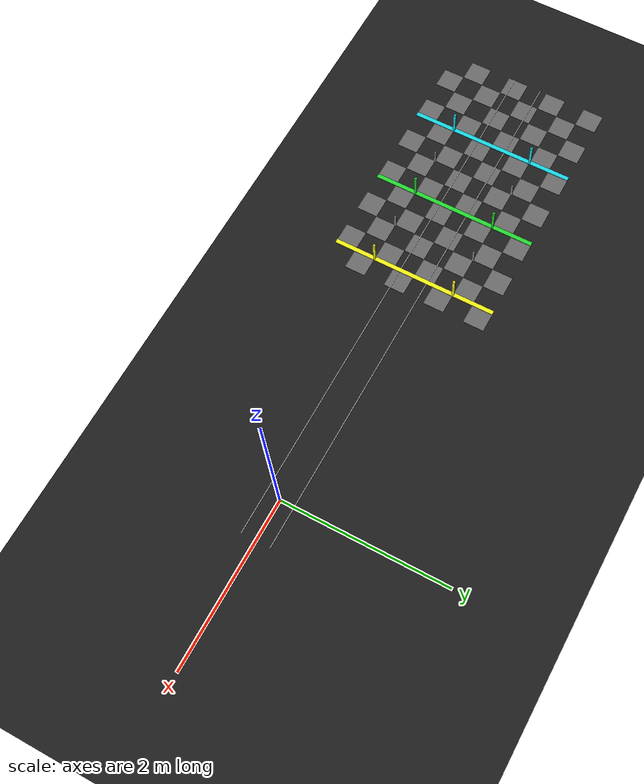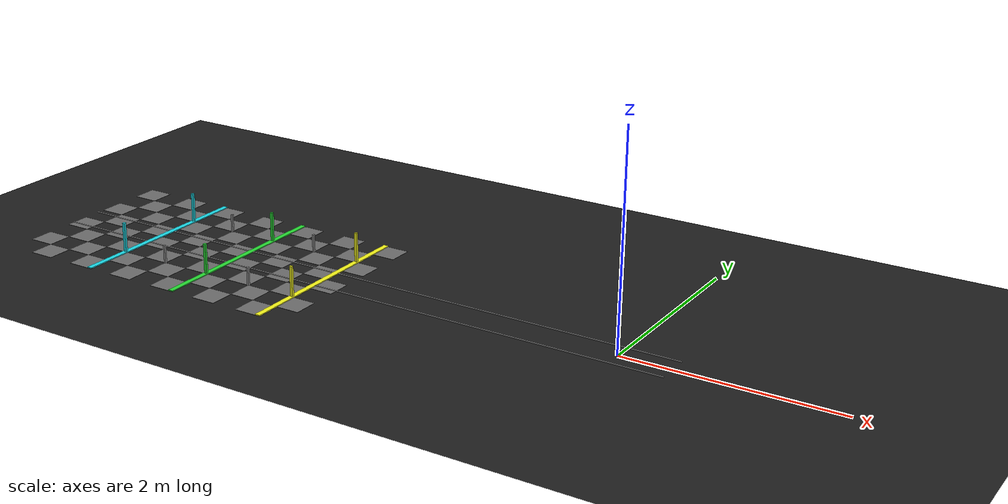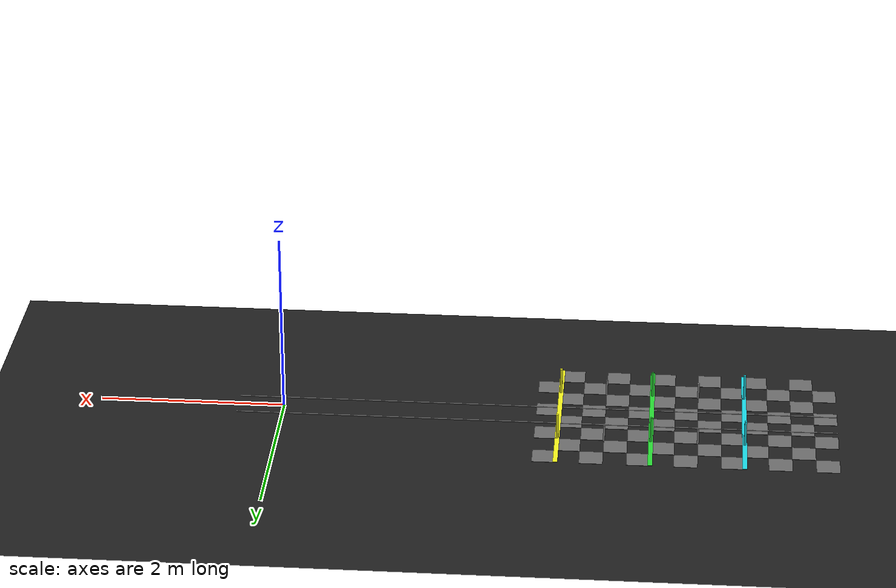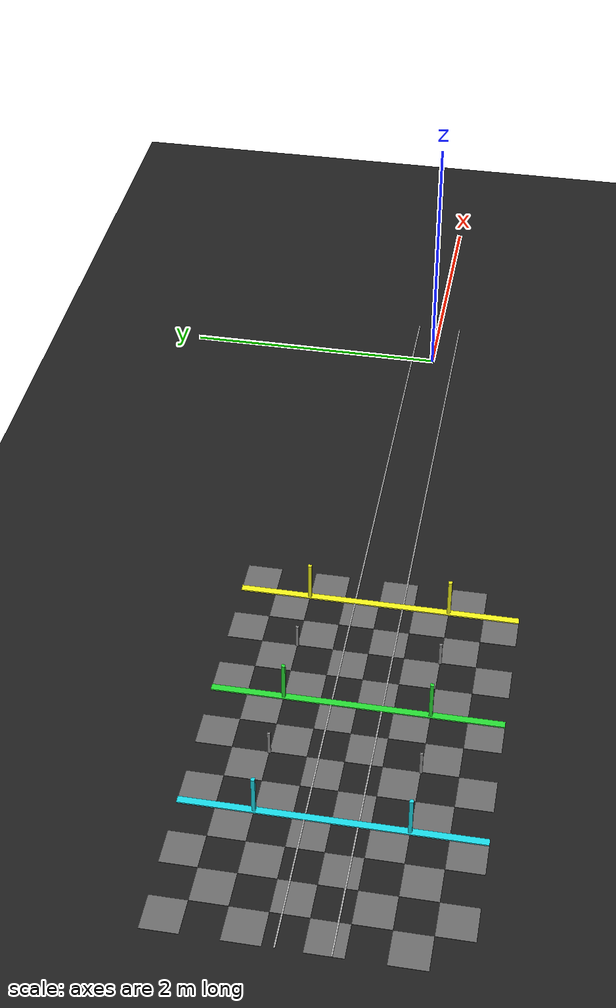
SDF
<sdf version="1.8">
 <world name="reference_grid">
  <model name="ground_plane">
   <static>true</static>
   <link name="link">
    <collision name="collision">
     <geometry><plane><normal>0 0 1</normal><size>40 40</size></plane></geometry>
    </collision>
    <visual name="visual">
     <geometry><plane><normal>0 0 1</normal><size>40 40</size></plane></geometry>
     <material><ambient>0.12 0.12 0.12 1</ambient><diffuse>0.12 0.12 0.12 1</diffuse></material>
    </visual>
   </link>
  </model>
  <model name="tile_0">
   <static>true</static>
   <pose>-5.8750 -0.6250 0.001 0 0 0</pose>
   <link name="link">
    <visual name="v">
     <geometry><box><size>0.25 0.25 0.002</size></box></geometry>
     <material><ambient>0.42 0.42 0.42 1</ambient><diffuse>0.42 0.42 0.42 1</diffuse></material>
    </visual>
   </link>
  </model>
  <model name="tile_1">
   <static>true</static>
   <pose>-5.8750 -0.1250 0.001 0 0 0</pose>
   <link name="link">
    <visual name="v">
     <geometry><box><size>0.25 0.25 0.002</size></box></geometry>
     <material><ambient>0.42 0.42 0.42 1</ambient><diffuse>0.42 0.42 0.42 1</diffuse></material>
    </visual>
   </link>
  </model>
  <model name="tile_2">
   <static>true</static>
   <pose>-5.8750 0.3750 0.001 0 0 0</pose>
   <link name="link">
    <visual name="v">
     <geometry><box><size>0.25 0.25 0.002</size></box></geometry>
     <material><ambient>0.42 0.42 0.42 1</ambient><diffuse>0.42 0.42 0.42 1</diffuse></material>
    </visual>
   </link>
  </model>
  <model name="tile_3">
   <static>true</static>
   <pose>-5.8750 0.8750 0.001 0 0 0</pose>
   <link name="link">
    <visual name="v">
     <geometry><box><size>0.25 0.25 0.002</size></box></geometry>
     <material><ambient>0.42 0.42 0.42 1</ambient><diffuse>0.42 0.42 0.42 1</diffuse></material>
    </visual>
   </link>
  </model>
  <model name="tile_4">
   <static>true</static>
   <pose>-5.6250 -0.8750 0.001 0 0 0</pose>
   <link name="link">
    <visual name="v">
     <geometry><box><size>0.25 0.25 0.002</size></box></geometry>
     <material><ambient>0.42 0.42 0.42 1</ambient><diffuse>0.42 0.42 0.42 1</diffuse></material>
    </visual>
   </link>
  </model>
  <model name="tile_5">
   <static>true</static>
   <pose>-5.6250 -0.3750 0.001 0 0 0</pose>
   <link name="link">
    <visual name="v">
     <geometry><box><size>0.25 0.25 0.002</size></box></geometry>
     <material><ambient>0.42 0.42 0.42 1</ambient><diffuse>0.42 0.42 0.42 1</diffuse></material>
    </visual>
   </link>
  </model>
  <model name="tile_6">
   <static>true</static>
   <pose>-5.6250 0.1250 0.001 0 0 0</pose>
   <link name="link">
    <visual name="v">
     <geometry><box><size>0.25 0.25 0.002</size></box></geometry>
     <material><ambient>0.42 0.42 0.42 1</ambient><diffuse>0.42 0.42 0.42 1</diffuse></material>
    </visual>
   </link>
  </model>
  <model name="tile_7">
   <static>true</static>
   <pose>-5.6250 0.6250 0.001 0 0 0</pose>
   <link name="link">
    <visual name="v">
     <geometry><box><size>0.25 0.25 0.002</size></box></geometry>
     <material><ambient>0.42 0.42 0.42 1</ambient><diffuse>0.42 0.42 0.42 1</diffuse></material>
    </visual>
   </link>
  </model>
  <model name="tile_8">
   <static>true</static>
   <pose>-5.3750 -0.6250 0.001 0 0 0</pose>
   <link name="link">
    <visual name="v">
     <geometry><box><size>0.25 0.25 0.002</size></box></geometry>
     <material><ambient>0.42 0.42 0.42 1</ambient><diffuse>0.42 0.42 0.42 1</diffuse></material>
    </visual>
   </link>
  </model>
  <model name="tile_9">
   <static>true</static>
   <pose>-5.3750 -0.1250 0.001 0 0 0</pose>
   <link name="link">
    <visual name="v">
     <geometry><box><size>0.25 0.25 0.002</size></box></geometry>
     <material><ambient>0.42 0.42 0.42 1</ambient><diffuse>0.42 0.42 0.42 1</diffuse></material>
    </visual>
   </link>
  </model>
  <model name="tile_10">
   <static>true</static>
   <pose>-5.3750 0.3750 0.001 0 0 0</pose>
   <link name="link">
    <visual name="v">
     <geometry><box><size>0.25 0.25 0.002</size></box></geometry>
     <material><ambient>0.42 0.42 0.42 1</ambient><diffuse>0.42 0.42 0.42 1</diffuse></material>
    </visual>
   </link>
  </model>
  <model name="tile_11">
   <static>true</static>
   <pose>-5.3750 0.8750 0.001 0 0 0</pose>
   <link name="link">
    <visual name="v">
     <geometry><box><size>0.25 0.25 0.002</size></box></geometry>
     <material><ambient>0.42 0.42 0.42 1</ambient><diffuse>0.42 0.42 0.42 1</diffuse></material>
    </visual>
   </link>
  </model>
  <model name="tile_12">
   <static>true</static>
   <pose>-5.1250 -0.8750 0.001 0 0 0</pose>
   <link name="link">
    <visual name="v">
     <geometry><box><size>0.25 0.25 0.002</size></box></geometry>
     <material><ambient>0.42 0.42 0.42 1</ambient><diffuse>0.42 0.42 0.42 1</diffuse></material>
    </visual>
   </link>
  </model>
  <model name="tile_13">
   <static>true</static>
   <pose>-5.1250 -0.3750 0.001 0 0 0</pose>
   <link name="link">
    <visual name="v">
     <geometry><box><size>0.25 0.25 0.002</size></box></geometry>
     <material><ambient>0.42 0.42 0.42 1</ambient><diffuse>0.42 0.42 0.42 1</diffuse></material>
    </visual>
   </link>
  </model>
  <model name="tile_14">
   <static>true</static>
   <pose>-5.1250 0.1250 0.001 0 0 0</pose>
   <link name="link">
    <visual name="v">
     <geometry><box><size>0.25 0.25 0.002</size></box></geometry>
     <material><ambient>0.42 0.42 0.42 1</ambient><diffuse>0.42 0.42 0.42 1</diffuse></material>
    </visual>
   </link>
  </model>
  <model name="tile_15">
   <static>true</static>
   <pose>-5.1250 0.6250 0.001 0 0 0</pose>
   <link name="link">
    <visual name="v">
     <geometry><box><size>0.25 0.25 0.002</size></box></geometry>
     <material><ambient>0.42 0.42 0.42 1</ambient><diffuse>0.42 0.42 0.42 1</diffuse></material>
    </visual>
   </link>
  </model>
  <model name="tile_16">
   <static>true</static>
   <pose>-4.8750 -0.6250 0.001 0 0 0</pose>
   <link name="link">
    <visual name="v">
     <geometry><box><size>0.25 0.25 0.002</size></box></geometry>
     <material><ambient>0.42 0.42 0.42 1</ambient><diffuse>0.42 0.42 0.42 1</diffuse></material>
    </visual>
   </link>
  </model>
  <model name="tile_17">
   <static>true</static>
   <pose>-4.8750 -0.1250 0.001 0 0 0</pose>
   <link name="link">
    <visual name="v">
     <geometry><box><size>0.25 0.25 0.002</size></box></geometry>
     <material><ambient>0.42 0.42 0.42 1</ambient><diffuse>0.42 0.42 0.42 1</diffuse></material>
    </visual>
   </link>
  </model>
  <model name="tile_18">
   <static>true</static>
   <pose>-4.8750 0.3750 0.001 0 0 0</pose>
   <link name="link">
    <visual name="v">
     <geometry><box><size>0.25 0.25 0.002</size></box></geometry>
     <material><ambient>0.42 0.42 0.42 1</ambient><diffuse>0.42 0.42 0.42 1</diffuse></material>
    </visual>
   </link>
  </model>
  <model name="tile_19">
   <static>true</static>
   <pose>-4.8750 0.8750 0.001 0 0 0</pose>
   <link name="link">
    <visual name="v">
     <geometry><box><size>0.25 0.25 0.002</size></box></geometry>
     <material><ambient>0.42 0.42 0.42 1</ambient><diffuse>0.42 0.42 0.42 1</diffuse></material>
    </visual>
   </link>
  </model>
  <model name="tile_20">
   <static>true</static>
   <pose>-4.6250 -0.8750 0.001 0 0 0</pose>
   <link name="link">
    <visual name="v">
     <geometry><box><size>0.25 0.25 0.002</size></box></geometry>
     <material><ambient>0.42 0.42 0.42 1</ambient><diffuse>0.42 0.42 0.42 1</diffuse></material>
    </visual>
   </link>
  </model>
  <model name="tile_21">
   <static>true</static>
   <pose>-4.6250 -0.3750 0.001 0 0 0</pose>
   <link name="link">
    <visual name="v">
     <geometry><box><size>0.25 0.25 0.002</size></box></geometry>
     <material><ambient>0.42 0.42 0.42 1</ambient><diffuse>0.42 0.42 0.42 1</diffuse></material>
    </visual>
   </link>
  </model>
  <model name="tile_22">
   <static>true</static>
   <pose>-4.6250 0.1250 0.001 0 0 0</pose>
   <link name="link">
    <visual name="v">
     <geometry><box><size>0.25 0.25 0.002</size></box></geometry>
     <material><ambient>0.42 0.42 0.42 1</ambient><diffuse>0.42 0.42 0.42 1</diffuse></material>
    </visual>
   </link>
  </model>
  <model name="tile_23">
   <static>true</static>
   <pose>-4.6250 0.6250 0.001 0 0 0</pose>
   <link name="link">
    <visual name="v">
     <geometry><box><size>0.25 0.25 0.002</size></box></geometry>
     <material><ambient>0.42 0.42 0.42 1</ambient><diffuse>0.42 0.42 0.42 1</diffuse></material>
    </visual>
   </link>
  </model>
  <model name="tile_24">
   <static>true</static>
   <pose>-4.3750 -0.6250 0.001 0 0 0</pose>
   <link name="link">
    <visual name="v">
     <geometry><box><size>0.25 0.25 0.002</size></box></geometry>
     <material><ambient>0.42 0.42 0.42 1</ambient><diffuse>0.42 0.42 0.42 1</diffuse></material>
    </visual>
   </link>
  </model>
  <model name="tile_25">
   <static>true</static>
   <pose>-4.3750 -0.1250 0.001 0 0 0</pose>
   <link name="link">
    <visual name="v">
     <geometry><box><size>0.25 0.25 0.002</size></box></geometry>
     <material><ambient>0.42 0.42 0.42 1</ambient><diffuse>0.42 0.42 0.42 1</diffuse></material>
    </visual>
   </link>
  </model>
  <model name="tile_26">
   <static>true</static>
   <pose>-4.3750 0.3750 0.001 0 0 0</pose>
   <link name="link">
    <visual name="v">
     <geometry><box><size>0.25 0.25 0.002</size></box></geometry>
     <material><ambient>0.42 0.42 0.42 1</ambient><diffuse>0.42 0.42 0.42 1</diffuse></material>
    </visual>
   </link>
  </model>
  <model name="tile_27">
   <static>true</static>
   <pose>-4.3750 0.8750 0.001 0 0 0</pose>
   <link name="link">
    <visual name="v">
     <geometry><box><size>0.25 0.25 0.002</size></box></geometry>
     <material><ambient>0.42 0.42 0.42 1</ambient><diffuse>0.42 0.42 0.42 1</diffuse></material>
    </visual>
   </link>
  </model>
  <model name="tile_28">
   <static>true</static>
   <pose>-4.1250 -0.8750 0.001 0 0 0</pose>
   <link name="link">
    <visual name="v">
     <geometry><box><size>0.25 0.25 0.002</size></box></geometry>
     <material><ambient>0.42 0.42 0.42 1</ambient><diffuse>0.42 0.42 0.42 1</diffuse></material>
    </visual>
   </link>
  </model>
  <model name="tile_29">
   <static>true</static>
   <pose>-4.1250 -0.3750 0.001 0 0 0</pose>
   <link name="link">
    <visual name="v">
     <geometry><box><size>0.25 0.25 0.002</size></box></geometry>
     <material><ambient>0.42 0.42 0.42 1</ambient><diffuse>0.42 0.42 0.42 1</diffuse></material>
    </visual>
   </link>
  </model>
  <model name="tile_30">
   <static>true</static>
   <pose>-4.1250 0.1250 0.001 0 0 0</pose>
   <link name="link">
    <visual name="v">
     <geometry><box><size>0.25 0.25 0.002</size></box></geometry>
     <material><ambient>0.42 0.42 0.42 1</ambient><diffuse>0.42 0.42 0.42 1</diffuse></material>
    </visual>
   </link>
  </model>
  <model name="tile_31">
   <static>true</static>
   <pose>-4.1250 0.6250 0.001 0 0 0</pose>
   <link name="link">
    <visual name="v">
     <geometry><box><size>0.25 0.25 0.002</size></box></geometry>
     <material><ambient>0.42 0.42 0.42 1</ambient><diffuse>0.42 0.42 0.42 1</diffuse></material>
    </visual>
   </link>
  </model>
  <model name="tile_32">
   <static>true</static>
   <pose>-3.8750 -0.6250 0.001 0 0 0</pose>
   <link name="link">
    <visual name="v">
     <geometry><box><size>0.25 0.25 0.002</size></box></geometry>
     <material><ambient>0.42 0.42 0.42 1</ambient><diffuse>0.42 0.42 0.42 1</diffuse></material>
    </visual>
   </link>
  </model>
  <model name="tile_33">
   <static>true</static>
   <pose>-3.8750 -0.1250 0.001 0 0 0</pose>
   <link name="link">
    <visual name="v">
     <geometry><box><size>0.25 0.25 0.002</size></box></geometry>
     <material><ambient>0.42 0.42 0.42 1</ambient><diffuse>0.42 0.42 0.42 1</diffuse></material>
    </visual>
   </link>
  </model>
  <model name="tile_34">
   <static>true</static>
   <pose>-3.8750 0.3750 0.001 0 0 0</pose>
   <link name="link">
    <visual name="v">
     <geometry><box><size>0.25 0.25 0.002</size></box></geometry>
     <material><ambient>0.42 0.42 0.42 1</ambient><diffuse>0.42 0.42 0.42 1</diffuse></material>
    </visual>
   </link>
  </model>
  <model name="tile_35">
   <static>true</static>
   <pose>-3.8750 0.8750 0.001 0 0 0</pose>
   <link name="link">
    <visual name="v">
     <geometry><box><size>0.25 0.25 0.002</size></box></geometry>
     <material><ambient>0.42 0.42 0.42 1</ambient><diffuse>0.42 0.42 0.42 1</diffuse></material>
    </visual>
   </link>
  </model>
  <model name="tile_36">
   <static>true</static>
   <pose>-3.6250 -0.8750 0.001 0 0 0</pose>
   <link name="link">
    <visual name="v">
     <geometry><box><size>0.25 0.25 0.002</size></box></geometry>
     <material><ambient>0.42 0.42 0.42 1</ambient><diffuse>0.42 0.42 0.42 1</diffuse></material>
    </visual>
   </link>
  </model>
  <model name="tile_37">
   <static>true</static>
   <pose>-3.6250 -0.3750 0.001 0 0 0</pose>
   <link name="link">
    <visual name="v">
     <geometry><box><size>0.25 0.25 0.002</size></box></geometry>
     <material><ambient>0.42 0.42 0.42 1</ambient><diffuse>0.42 0.42 0.42 1</diffuse></material>
    </visual>
   </link>
  </model>
  <model name="tile_38">
   <static>true</static>
   <pose>-3.6250 0.1250 0.001 0 0 0</pose>
   <link name="link">
    <visual name="v">
     <geometry><box><size>0.25 0.25 0.002</size></box></geometry>
     <material><ambient>0.42 0.42 0.42 1</ambient><diffuse>0.42 0.42 0.42 1</diffuse></material>
    </visual>
   </link>
  </model>
  <model name="tile_39">
   <static>true</static>
   <pose>-3.6250 0.6250 0.001 0 0 0</pose>
   <link name="link">
    <visual name="v">
     <geometry><box><size>0.25 0.25 0.002</size></box></geometry>
     <material><ambient>0.42 0.42 0.42 1</ambient><diffuse>0.42 0.42 0.42 1</diffuse></material>
    </visual>
   </link>
  </model>
  <model name="tile_40">
   <static>true</static>
   <pose>-3.3750 -0.6250 0.001 0 0 0</pose>
   <link name="link">
    <visual name="v">
     <geometry><box><size>0.25 0.25 0.002</size></box></geometry>
     <material><ambient>0.42 0.42 0.42 1</ambient><diffuse>0.42 0.42 0.42 1</diffuse></material>
    </visual>
   </link>
  </model>
  <model name="tile_41">
   <static>true</static>
   <pose>-3.3750 -0.1250 0.001 0 0 0</pose>
   <link name="link">
    <visual name="v">
     <geometry><box><size>0.25 0.25 0.002</size></box></geometry>
     <material><ambient>0.42 0.42 0.42 1</ambient><diffuse>0.42 0.42 0.42 1</diffuse></material>
    </visual>
   </link>
  </model>
  <model name="tile_42">
   <static>true</static>
   <pose>-3.3750 0.3750 0.001 0 0 0</pose>
   <link name="link">
    <visual name="v">
     <geometry><box><size>0.25 0.25 0.002</size></box></geometry>
     <material><ambient>0.42 0.42 0.42 1</ambient><diffuse>0.42 0.42 0.42 1</diffuse></material>
    </visual>
   </link>
  </model>
  <model name="tile_43">
   <static>true</static>
   <pose>-3.3750 0.8750 0.001 0 0 0</pose>
   <link name="link">
    <visual name="v">
     <geometry><box><size>0.25 0.25 0.002</size></box></geometry>
     <material><ambient>0.42 0.42 0.42 1</ambient><diffuse>0.42 0.42 0.42 1</diffuse></material>
    </visual>
   </link>
  </model>
  <model name="tile_44">
   <static>true</static>
   <pose>-3.1250 -0.8750 0.001 0 0 0</pose>
   <link name="link">
    <visual name="v">
     <geometry><box><size>0.25 0.25 0.002</size></box></geometry>
     <material><ambient>0.42 0.42 0.42 1</ambient><diffuse>0.42 0.42 0.42 1</diffuse></material>
    </visual>
   </link>
  </model>
  <model name="tile_45">
   <static>true</static>
   <pose>-3.1250 -0.3750 0.001 0 0 0</pose>
   <link name="link">
    <visual name="v">
     <geometry><box><size>0.25 0.25 0.002</size></box></geometry>
     <material><ambient>0.42 0.42 0.42 1</ambient><diffuse>0.42 0.42 0.42 1</diffuse></material>
    </visual>
   </link>
  </model>
  <model name="tile_46">
   <static>true</static>
   <pose>-3.1250 0.1250 0.001 0 0 0</pose>
   <link name="link">
    <visual name="v">
     <geometry><box><size>0.25 0.25 0.002</size></box></geometry>
     <material><ambient>0.42 0.42 0.42 1</ambient><diffuse>0.42 0.42 0.42 1</diffuse></material>
    </visual>
   </link>
  </model>
  <model name="tile_47">
   <static>true</static>
   <pose>-3.1250 0.6250 0.001 0 0 0</pose>
   <link name="link">
    <visual name="v">
     <geometry><box><size>0.25 0.25 0.002</size></box></geometry>
     <material><ambient>0.42 0.42 0.42 1</ambient><diffuse>0.42 0.42 0.42 1</diffuse></material>
    </visual>
   </link>
  </model>
  <model name="tile_48">
   <static>true</static>
   <pose>-2.8750 -0.6250 0.001 0 0 0</pose>
   <link name="link">
    <visual name="v">
     <geometry><box><size>0.25 0.25 0.002</size></box></geometry>
     <material><ambient>0.42 0.42 0.42 1</ambient><diffuse>0.42 0.42 0.42 1</diffuse></material>
    </visual>
   </link>
  </model>
  <model name="tile_49">
   <static>true</static>
   <pose>-2.8750 -0.1250 0.001 0 0 0</pose>
   <link name="link">
    <visual name="v">
     <geometry><box><size>0.25 0.25 0.002</size></box></geometry>
     <material><ambient>0.42 0.42 0.42 1</ambient><diffuse>0.42 0.42 0.42 1</diffuse></material>
    </visual>
   </link>
  </model>
  <model name="tile_50">
   <static>true</static>
   <pose>-2.8750 0.3750 0.001 0 0 0</pose>
   <link name="link">
    <visual name="v">
     <geometry><box><size>0.25 0.25 0.002</size></box></geometry>
     <material><ambient>0.42 0.42 0.42 1</ambient><diffuse>0.42 0.42 0.42 1</diffuse></material>
    </visual>
   </link>
  </model>
  <model name="tile_51">
   <static>true</static>
   <pose>-2.8750 0.8750 0.001 0 0 0</pose>
   <link name="link">
    <visual name="v">
     <geometry><box><size>0.25 0.25 0.002</size></box></geometry>
     <material><ambient>0.42 0.42 0.42 1</ambient><diffuse>0.42 0.42 0.42 1</diffuse></material>
    </visual>
   </link>
  </model>
  <model name="band_3m">
   <static>true</static>
   <pose>-3.0 0 0.006 0 0 0</pose>
   <link name="link">
    <visual name="v">
     <geometry><box><size>0.05 2.0 0.010</size></box></geometry>
     <material><ambient>0.95 0.95 0.10 1</ambient><diffuse>0.95 0.95 0.10 1</diffuse></material>
    </visual>
   </link>
  </model>
  <model name="band_4m">
   <static>true</static>
   <pose>-4.0 0 0.006 0 0 0</pose>
   <link name="link">
    <visual name="v">
     <geometry><box><size>0.05 2.0 0.010</size></box></geometry>
     <material><ambient>0.15 0.85 0.20 1</ambient><diffuse>0.15 0.85 0.20 1</diffuse></material>
    </visual>
   </link>
  </model>
  <model name="band_5m">
   <static>true</static>
   <pose>-5.0 0 0.006 0 0 0</pose>
   <link name="link">
    <visual name="v">
     <geometry><box><size>0.05 2.0 0.010</size></box></geometry>
     <material><ambient>0.10 0.85 0.90 1</ambient><diffuse>0.10 0.85 0.90 1</diffuse></material>
    </visual>
   </link>
  </model>
  <model name="post_3p5L">
   <static>true</static>
   <pose>-3.5  0.5 0.09 0 0 0</pose>
   <link name="link">
    <visual name="v">
     <geometry><box><size>0.020 0.020 0.18</size></box></geometry>
     <material><ambient>0.55 0.55 0.55 1</ambient><diffuse>0.55 0.55 0.55 1</diffuse></material>
    </visual>
   </link>
  </model>
  <model name="post_3p5R">
   <static>true</static>
   <pose>-3.5 -0.5 0.09 0 0 0</pose>
   <link name="link">
    <visual name="v">
     <geometry><box><size>0.020 0.020 0.18</size></box></geometry>
     <material><ambient>0.55 0.55 0.55 1</ambient><diffuse>0.55 0.55 0.55 1</diffuse></material>
    </visual>
   </link>
  </model>
  <model name="post_4p5L">
   <static>true</static>
   <pose>-4.5  0.5 0.09 0 0 0</pose>
   <link name="link">
    <visual name="v">
     <geometry><box><size>0.020 0.020 0.18</size></box></geometry>
     <material><ambient>0.55 0.55 0.55 1</ambient><diffuse>0.55 0.55 0.55 1</diffuse></material>
    </visual>
   </link>
  </model>
  <model name="post_4p5R">
   <static>true</static>
   <pose>-4.5 -0.5 0.09 0 0 0</pose>
   <link name="link">
    <visual name="v">
     <geometry><box><size>0.020 0.020 0.18</size></box></geometry>
     <material><ambient>0.55 0.55 0.55 1</ambient><diffuse>0.55 0.55 0.55 1</diffuse></material>
    </visual>
   </link>
  </model>
  <model name="mpost_3mL">
   <static>true</static>
   <pose>-3.0  0.5 0.15 0 0 0</pose>
   <link name="link">
    <visual name="v">
     <geometry><box><size>0.025 0.025 0.30</size></box></geometry>
     <material><ambient>0.95 0.95 0.10 1</ambient><diffuse>0.95 0.95 0.10 1</diffuse></material>
    </visual>
   </link>
  </model>
  <model name="mpost_3mR">
   <static>true</static>
   <pose>-3.0 -0.5 0.15 0 0 0</pose>
   <link name="link">
    <visual name="v">
     <geometry><box><size>0.025 0.025 0.30</size></box></geometry>
     <material><ambient>0.95 0.95 0.10 1</ambient><diffuse>0.95 0.95 0.10 1</diffuse></material>
    </visual>
   </link>
  </model>
  <model name="mpost_4mL">
   <static>true</static>
   <pose>-4.0  0.5 0.15 0 0 0</pose>
   <link name="link">
    <visual name="v">
     <geometry><box><size>0.025 0.025 0.30</size></box></geometry>
     <material><ambient>0.15 0.85 0.20 1</ambient><diffuse>0.15 0.85 0.20 1</diffuse></material>
    </visual>
   </link>
  </model>
  <model name="mpost_4mR">
   <static>true</static>
   <pose>-4.0 -0.5 0.15 0 0 0</pose>
   <link name="link">
    <visual name="v">
     <geometry><box><size>0.025 0.025 0.30</size></box></geometry>
     <material><ambient>0.15 0.85 0.20 1</ambient><diffuse>0.15 0.85 0.20 1</diffuse></material>
    </visual>
   </link>
  </model>
  <model name="mpost_5mL">
   <static>true</static>
   <pose>-5.0  0.5 0.15 0 0 0</pose>
   <link name="link">
    <visual name="v">
     <geometry><box><size>0.025 0.025 0.30</size></box></geometry>
     <material><ambient>0.10 0.85 0.90 1</ambient><diffuse>0.10 0.85 0.90 1</diffuse></material>
    </visual>
   </link>
  </model>
  <model name="mpost_5mR">
   <static>true</static>
   <pose>-5.0 -0.5 0.15 0 0 0</pose>
   <link name="link">
    <visual name="v">
     <geometry><box><size>0.025 0.025 0.30</size></box></geometry>
     <material><ambient>0.10 0.85 0.90 1</ambient><diffuse>0.10 0.85 0.90 1</diffuse></material>
    </visual>
   </link>
  </model>
  <model name="drift_line_left">
   <static>true</static>
   <pose>-2.75 0.172 0.004 0 0 0</pose>
   <link name="link">
    <visual name="v">
     <geometry><box><size>6.5 0.010 0.006</size></box></geometry>
     <material><ambient>0.7 0.7 0.7 1</ambient><diffuse>0.7 0.7 0.7 1</diffuse></material>
    </visual>
   </link>
  </model>
  <model name="drift_line_right">
   <static>true</static>
   <pose>-2.75 -0.172 0.004 0 0 0</pose>
   <link name="link">
    <visual name="v">
     <geometry><box><size>6.5 0.010 0.006</size></box></geometry>
     <material><ambient>0.7 0.7 0.7 1</ambient><diffuse>0.7 0.7 0.7 1</diffuse></material>
    </visual>
   </link>
  </model>
 </world>
</sdf>
